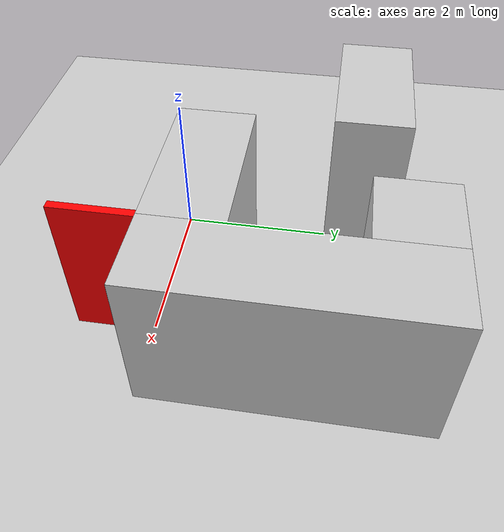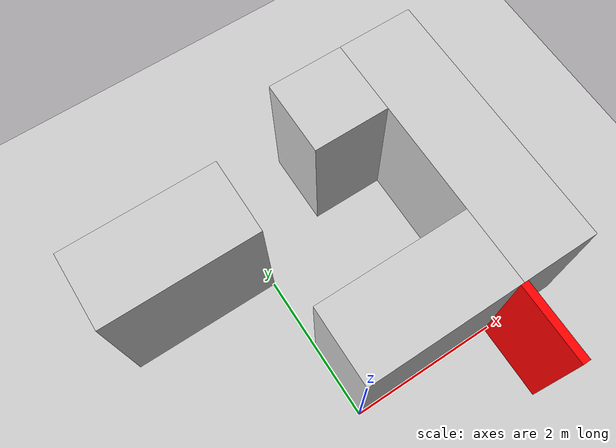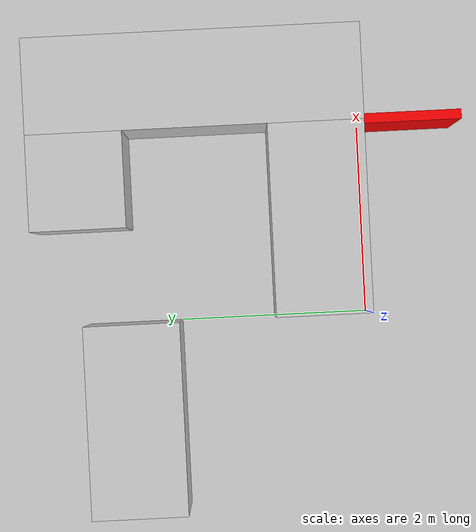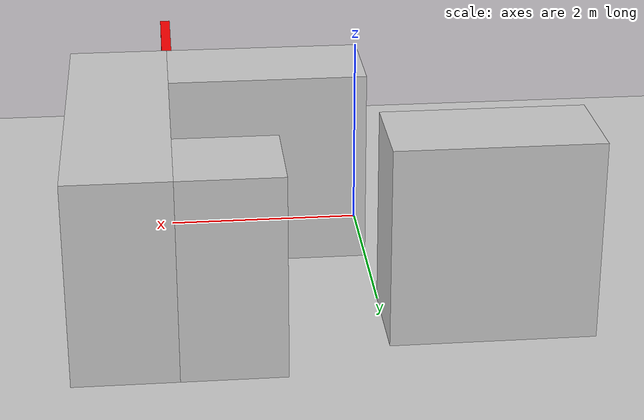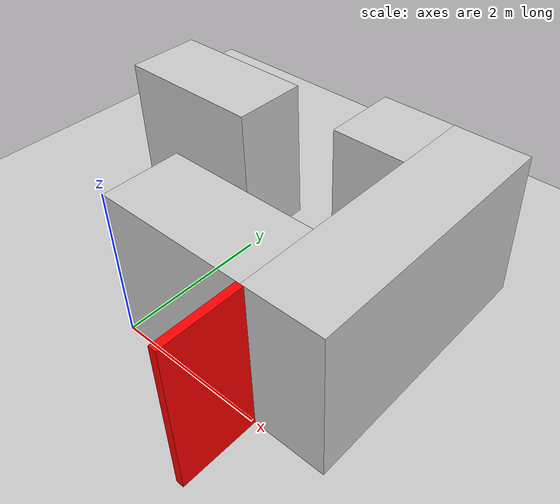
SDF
<?xml version="1.0"?>
<sdf version="1.8">
  <world name="default">
    <scene>
      <shadows>0</shadows>
    </scene>

    <gui fullscreen='0'>
      <camera name='user_camera'>
        <pose frame=''>0.319654 -0.235002 9.29441 0 1.5138 0.009599</pose>
        <view_controller>orbit</view_controller>
        <projection_type>perspective</projection_type>
      </camera>
    </gui>

    <physics type="ode">
      <real_time_update_rate>1000.0</real_time_update_rate>
      <max_step_size>0.001</max_step_size>
      <real_time_factor>1</real_time_factor>
      <ode>
        <solver>
          <type>quick</type>
          <iters>150</iters>
          <precon_iters>0</precon_iters>
          <sor>1.400000</sor>
          <use_dynamic_moi_rescaling>1</use_dynamic_moi_rescaling>
        </solver>
        <constraints>
          <cfm>0.00001</cfm>
          <erp>0.2</erp>
          <contact_max_correcting_vel>2000.000000</contact_max_correcting_vel>
          <contact_surface_layer>0.01000</contact_surface_layer>
        </constraints>
      </ode>
    </physics>
    <plugin
      filename="gz-sim-physics-system"
      name="gz::sim::systems::Physics">
    </plugin>
    <plugin
      filename="gz-sim-user-commands-system"
      name="gz::sim::systems::UserCommands">
    </plugin>
    <plugin
      filename="gz-sim-scene-broadcaster-system"
      name="gz::sim::systems::SceneBroadcaster">
    </plugin>
    <plugin
      filename="gz-sim-sensors-system"
      name="gz::sim::systems::Sensors">
      <render_engine>ogre2</render_engine>
    </plugin>
    <plugin
      filename="gz-sim-imu-system"
      name="gz::sim::systems::Imu">
    </plugin>

    <include>
      <uri>https://fuel.gazebosim.org/1.0/OpenRobotics/models/Ground Plane</uri>
    </include>

    <include>
      <uri>https://fuel.gazebosim.org/1.0/OpenRobotics/models/Sun</uri>
    </include>

    <scene>
      <shadows>false</shadows>
    </scene>

    <model name="box1">
      <static>1</static>
      <pose>1 0.5 1 0 0 0</pose>
      <link name="link">
        <collision name="collision">
          <geometry><box><size>2 1 2</size></box></geometry>
        </collision>
        <visual name="visual">
          <geometry><box><size>2 1 2</size></box></geometry>
          <material>
            <ambient>0.8 0.8 0.8 1</ambient>
            <diffuse>0.8 0.8 0.8 1</diffuse>
          </material>
        </visual>
      </link>
    </model>

    <model name="box2">
      <static>1</static>
      <pose>2.5 1.75 1 0 0 0</pose>
      <link name="link">
        <collision name="collision">
          <geometry><box><size>1 3.5 2</size></box></geometry>
        </collision>
        <visual name="visual">
          <geometry><box><size>1 3.5 2</size></box></geometry>
          <material>
            <ambient>0.8 0.8 0.8 1</ambient>
            <diffuse>0.8 0.8 0.8 1</diffuse>
          </material>
        </visual>
      </link>
    </model>

    <model name="box3">
      <static>1</static>
      <pose>1.5 3 1 0 0 0</pose>
      <link name="link">
        <collision name="collision">
          <geometry><box><size>1 1 2</size></box></geometry>
        </collision>
        <visual name="visual">
          <geometry><box><size>1 1 2</size></box></geometry>
          <material>
            <ambient>0.8 0.8 0.8 1</ambient>
            <diffuse>0.8 0.8 0.8 1</diffuse>
          </material>
        </visual>
      </link>
    </model>

    <model name="box4">
      <static>1</static>
      <pose>-1 2.5 1 0 0 0</pose>
      <link name="link">
        <collision name="collision">
          <geometry><box><size>2 1 2</size></box></geometry>
        </collision>
        <visual name="visual">
          <geometry><box><size>2 1 2</size></box></geometry>
          <material>
            <ambient>0.8 0.8 0.8 1</ambient>
            <diffuse>0.8 0.8 0.8 1</diffuse>
          </material>
        </visual>
      </link>
    </model>

    <model name="red_goal_wall">
      <static>1</static>
      <!-- x y z roll pitch yaw -->
      <pose>2 -0.5 1.0 0 0 0</pose>
      <link name="link">
        <collision name="collision">
          <geometry><box><size>0.1 1.0 2.0</size></box></geometry>
        </collision>
        <visual name="visual">
          <geometry><box><size>0.1 1.0 2.0</size></box></geometry>
          <material>
            <!-- make it *very* red and bright -->
            <ambient>1 0 0 1</ambient>
            <diffuse>1 0 0 1</diffuse>
            <specular>0.2 0.2 0.2 1</specular>
            <emissive>0.6 0 0 1</emissive>
          </material>
        </visual>
      </link>
    </model>

  </world>
</sdf>
